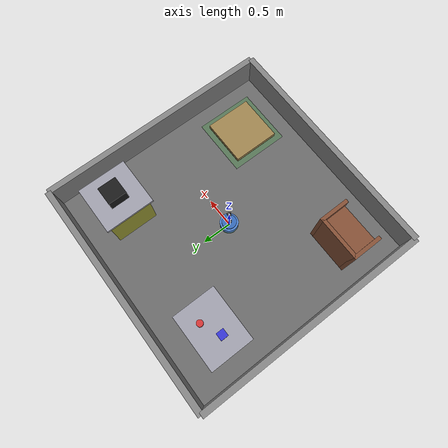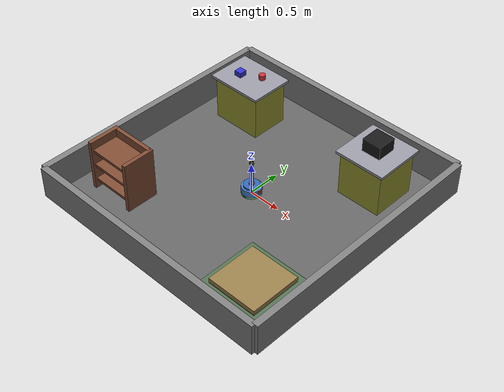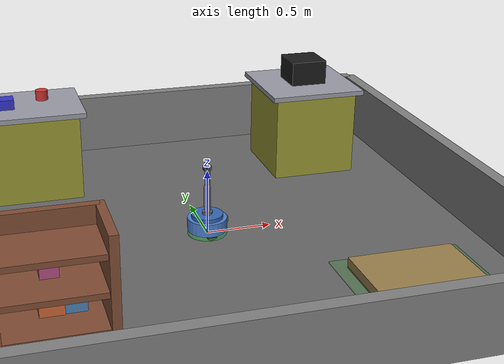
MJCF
<?xml version="1.0" encoding="utf-8"?>
<mujoco model="factory">
  <compiler angle="radian" autolimits="true"/>

  <option timestep="0.01" gravity="0 0 -9.81" integrator="implicitfast"/>

  <default>
    <default class="robot">
      <geom rgba="0.3 0.5 0.8 1" friction="1.0 0.005 0.0001"/>
      <joint damping="0.5"/>
    </default>
    <default class="floor">
      <geom rgba="0.4 0.4 0.4 1" friction="1.0 0.005 0.0001"/>
    </default>
    <default class="workstation">
      <geom rgba="0.6 0.6 0.2 1"/>
    </default>
    <default class="storage">
      <geom rgba="0.5 0.3 0.2 1"/>
    </default>
    <default class="box">
      <geom rgba="0.8 0.4 0.2 1" mass="0.5"/>
    </default>
    <default class="goal">
      <geom rgba="0.2 0.8 0.3 0.5"/>
    </default>
  </default>

  <asset>
    <!-- Checkered floor texture for visual reference -->
    <texture name="floor_tex" type="2d" builtin="checker" rgb1="0.35 0.35 0.35" rgb2="0.45 0.45 0.45" width="512" height="512"/>
    <material name="floor_mat" texture="floor_tex" texrepeat="10 10" reflectance="0.1"/>

    <!-- Metal texture for workstations -->
    <texture name="metal_tex" type="2d" builtin="flat" rgb1="0.6 0.6 0.65" width="64" height="64"/>
    <material name="metal_mat" texture="metal_tex" reflectance="0.3" shininess="0.5"/>

    <!-- Wood texture for boxes -->
    <texture name="wood_tex" type="2d" builtin="flat" rgb1="0.6 0.4 0.25" width="64" height="64"/>
    <material name="wood_mat" texture="wood_tex"/>
  </asset>

  <worldbody>
    <!-- Lighting -->
    <light name="overhead" pos="0 0 4" dir="0 0 -1" diffuse="0.8 0.8 0.8" specular="0.3 0.3 0.3" directional="true"/>
    <light name="fill" pos="2 2 3" dir="-0.5 -0.5 -1" diffuse="0.4 0.4 0.4" directional="true"/>

    <!-- Factory Floor (4m x 4m) -->
    <geom name="floor" type="plane" size="2 2 0.1" material="floor_mat" class="floor"/>

    <!-- Walls (boundaries) -->
    <geom name="wall_north" type="box" pos="0 2 0.25" size="2 0.05 0.25" rgba="0.5 0.5 0.5 1"/>
    <geom name="wall_south" type="box" pos="0 -2 0.25" size="2 0.05 0.25" rgba="0.5 0.5 0.5 1"/>
    <geom name="wall_east" type="box" pos="2 0 0.25" size="0.05 2 0.25" rgba="0.5 0.5 0.5 1"/>
    <geom name="wall_west" type="box" pos="-2 0 0.25" size="0.05 2 0.25" rgba="0.5 0.5 0.5 1"/>

    <!-- Workstation 1: Assembly area (top-left) -->
    <body name="workstation1" pos="-1.2 1.2 0">
      <geom name="ws1_table" type="box" pos="0 0 0.35" size="0.4 0.3 0.35" material="metal_mat" class="workstation"/>
      <geom name="ws1_top" type="box" pos="0 0 0.72" size="0.45 0.35 0.02" material="metal_mat"/>
      <!-- Tools/items on workstation -->
      <geom name="ws1_item1" type="cylinder" pos="0.15 0.1 0.78" size="0.05 0.04" rgba="0.8 0.2 0.2 1"/>
      <geom name="ws1_item2" type="box" pos="-0.15 -0.05 0.78" size="0.06 0.06 0.04" rgba="0.2 0.2 0.8 1"/>
    </body>

    <!-- Workstation 2: Inspection area (top-right) -->
    <body name="workstation2" pos="1.2 1.2 0">
      <geom name="ws2_table" type="box" pos="0 0 0.35" size="0.35 0.35 0.35" material="metal_mat" class="workstation"/>
      <geom name="ws2_top" type="box" pos="0 0 0.72" size="0.4 0.4 0.02" material="metal_mat"/>
      <!-- Inspection equipment -->
      <geom name="ws2_scanner" type="box" pos="0 0 0.85" size="0.15 0.15 0.1" rgba="0.1 0.1 0.1 1"/>
    </body>

    <!-- Storage Area: Shelving unit (bottom-left) -->
    <body name="storage" pos="-1.3 -1.2 0">
      <!-- Shelf frame -->
      <geom name="shelf_left" type="box" pos="-0.35 0 0.4" size="0.03 0.25 0.4" class="storage"/>
      <geom name="shelf_right" type="box" pos="0.35 0 0.4" size="0.03 0.25 0.4" class="storage"/>
      <geom name="shelf_back" type="box" pos="0 0.22 0.4" size="0.35 0.03 0.4" class="storage"/>
      <geom name="shelf_bottom" type="box" pos="0 0 0.15" size="0.32 0.22 0.02" class="storage"/>
      <geom name="shelf_middle" type="box" pos="0 0 0.4" size="0.32 0.22 0.02" class="storage"/>
      <geom name="shelf_top" type="box" pos="0 0 0.65" size="0.32 0.22 0.02" class="storage"/>
    </body>

    <!-- Movable boxes in storage -->
    <body name="box1" pos="-1.3 -1.1 0.22">
      <freejoint name="box1_joint"/>
      <geom name="box1_geom" type="box" size="0.08 0.08 0.06" material="wood_mat" class="box"/>
    </body>

    <body name="box2" pos="-1.15 -1.1 0.22">
      <freejoint name="box2_joint"/>
      <geom name="box2_geom" type="box" size="0.07 0.07 0.05" rgba="0.3 0.5 0.7 1" class="box"/>
    </body>

    <body name="box3" pos="-1.3 -1.1 0.47">
      <freejoint name="box3_joint"/>
      <geom name="box3_geom" type="box" size="0.06 0.06 0.05" rgba="0.7 0.3 0.5 1" class="box"/>
    </body>

    <!-- Delivery/Drop-off zone (bottom-right) -->
    <body name="delivery_zone" pos="1.2 -1.2 0">
      <!-- Floor marking -->
      <geom name="dz_marker" type="box" pos="0 0 0.005" size="0.5 0.5 0.005" rgba="0.2 0.6 0.2 0.3"/>
      <!-- Pallet -->
      <geom name="pallet" type="box" pos="0 0 0.04" size="0.4 0.4 0.04" rgba="0.6 0.5 0.3 1"/>
    </body>

    <!-- Goal marker (dynamic, can be repositioned) -->
    <body name="goal_marker" pos="0 0 0">
      <geom name="goal_geom" type="cylinder" pos="0 0 0.01" size="0.15 0.01" class="goal"/>
      <geom name="goal_center" type="sphere" pos="0 0 0.03" size="0.03" rgba="0.1 0.9 0.2 0.8"/>
    </body>

    <!-- ============== MOBILE ROBOT ============== -->
    <body name="robot_base" pos="0 0 0.08">
      <!-- Main chassis -->
      <joint name="robot_x" type="slide" axis="1 0 0" range="-1.8 1.8"/>
      <joint name="robot_y" type="slide" axis="0 1 0" range="-1.8 1.8"/>
      <joint name="robot_yaw" type="hinge" axis="0 0 1" range="-3.14159 3.14159"/>

      <geom name="chassis" type="cylinder" size="0.15 0.05" class="robot"/>
      <geom name="chassis_top" type="cylinder" pos="0 0 0.06" size="0.12 0.02" rgba="0.2 0.4 0.7 1"/>

      <!-- Direction indicator (front) -->
      <geom name="front_marker" type="box" pos="0.12 0 0.02" size="0.04 0.02 0.02" rgba="0.9 0.3 0.1 1"/>

      <!-- Wheels (visual only - kinematics handled by joints) -->
      <geom name="wheel_left" type="cylinder" pos="0 0.12 -0.03" size="0.05 0.02" euler="1.5708 0 0" rgba="0.2 0.2 0.2 1"/>
      <geom name="wheel_right" type="cylinder" pos="0 -0.12 -0.03" size="0.05 0.02" euler="1.5708 0 0" rgba="0.2 0.2 0.2 1"/>
      <geom name="caster" type="sphere" pos="-0.1 0 -0.04" size="0.03" rgba="0.3 0.3 0.3 1"/>

      <!-- Robot arm mount point -->
      <body name="arm_base" pos="0 0 0.08">
        <geom name="arm_mount" type="cylinder" size="0.04 0.02" rgba="0.4 0.4 0.4 1"/>

        <!-- Simple 2-DOF arm for demonstration -->
        <body name="arm_link1" pos="0 0 0.02">
          <joint name="arm_shoulder" type="hinge" axis="0 1 0" range="-1.57 1.57" damping="1.0"/>
          <geom name="link1" type="capsule" fromto="0 0 0 0 0 0.2" size="0.025" rgba="0.5 0.5 0.6 1"/>

          <body name="arm_link2" pos="0 0 0.2">
            <joint name="arm_elbow" type="hinge" axis="0 1 0" range="-2.0 2.0" damping="1.0"/>
            <geom name="link2" type="capsule" fromto="0 0 0 0 0 0.15" size="0.02" rgba="0.5 0.5 0.6 1"/>

            <!-- Simple gripper -->
            <body name="gripper" pos="0 0 0.15">
              <joint name="gripper_joint" type="slide" axis="0 1 0" range="0 0.04" damping="0.5"/>
              <geom name="gripper_base" type="box" size="0.03 0.02 0.015" rgba="0.3 0.3 0.3 1"/>
              <geom name="gripper_left" type="box" pos="0 0.025 0.02" size="0.01 0.005 0.02" rgba="0.4 0.4 0.4 1"/>
              <geom name="gripper_right" type="box" pos="0 -0.025 0.02" size="0.01 0.005 0.02" rgba="0.4 0.4 0.4 1"/>
            </body>
          </body>
        </body>
      </body>
    </body>
  </worldbody>

  <actuator>
    <!-- Mobile base actuation (velocity control) -->
    <velocity name="base_x" joint="robot_x" kv="50" forcerange="-20 20"/>
    <velocity name="base_y" joint="robot_y" kv="50" forcerange="-20 20"/>
    <velocity name="base_yaw" joint="robot_yaw" kv="10" forcerange="-5 5"/>

    <!-- Arm actuation (position control) -->
    <position name="shoulder" joint="arm_shoulder" kp="50" forcerange="-10 10"/>
    <position name="elbow" joint="arm_elbow" kp="50" forcerange="-10 10"/>
    <position name="gripper" joint="gripper_joint" kp="20" forcerange="-5 5"/>
  </actuator>

  <sensor>
    <!-- Robot pose sensors -->
    <framepos name="robot_pos" objtype="body" objname="robot_base"/>
    <framequat name="robot_quat" objtype="body" objname="robot_base"/>
    <framelinvel name="robot_vel" objtype="body" objname="robot_base"/>

    <!-- Arm joint sensors -->
    <jointpos name="shoulder_pos" joint="arm_shoulder"/>
    <jointpos name="elbow_pos" joint="arm_elbow"/>
    <jointpos name="gripper_pos" joint="gripper_joint"/>

    <!-- End effector position -->
    <framepos name="ee_pos" objtype="body" objname="gripper"/>
  </sensor>
</mujoco>
